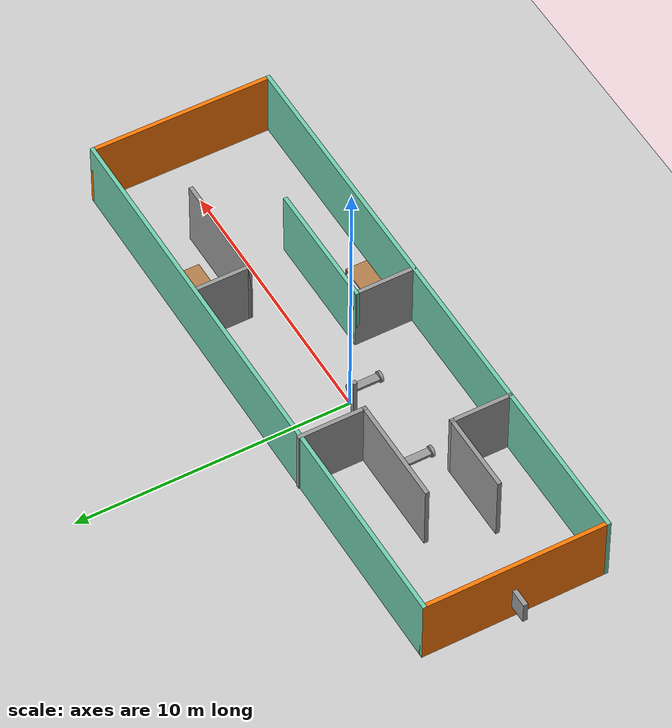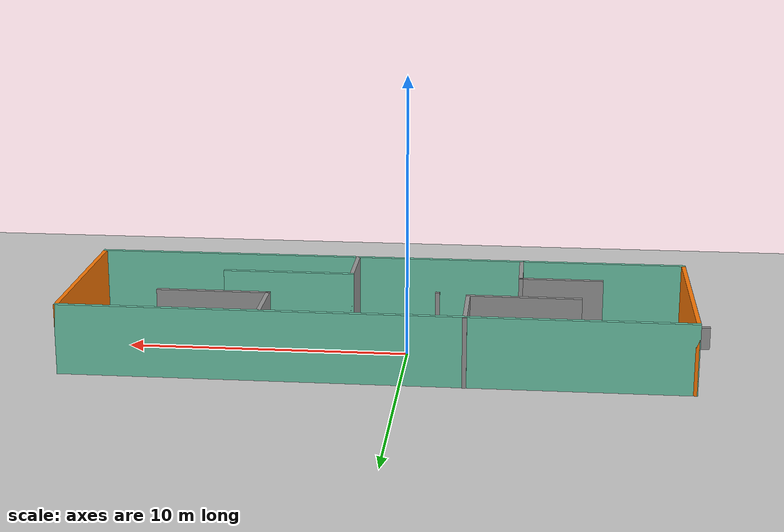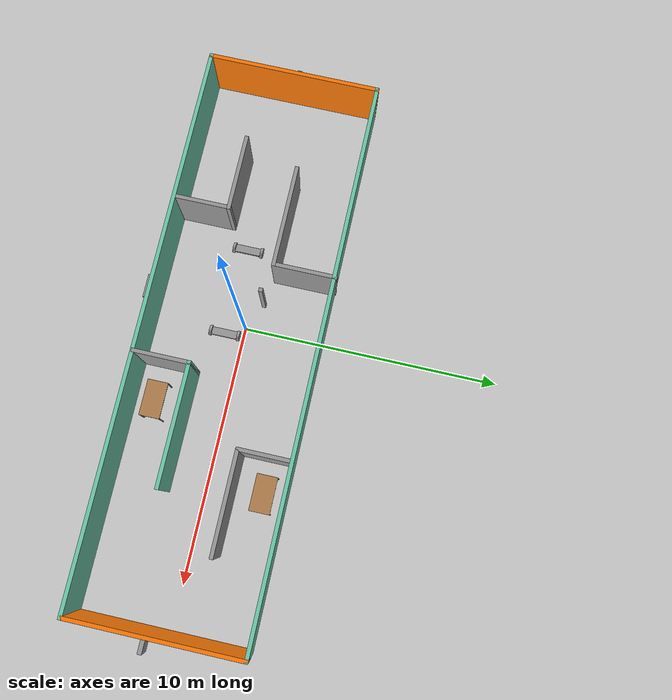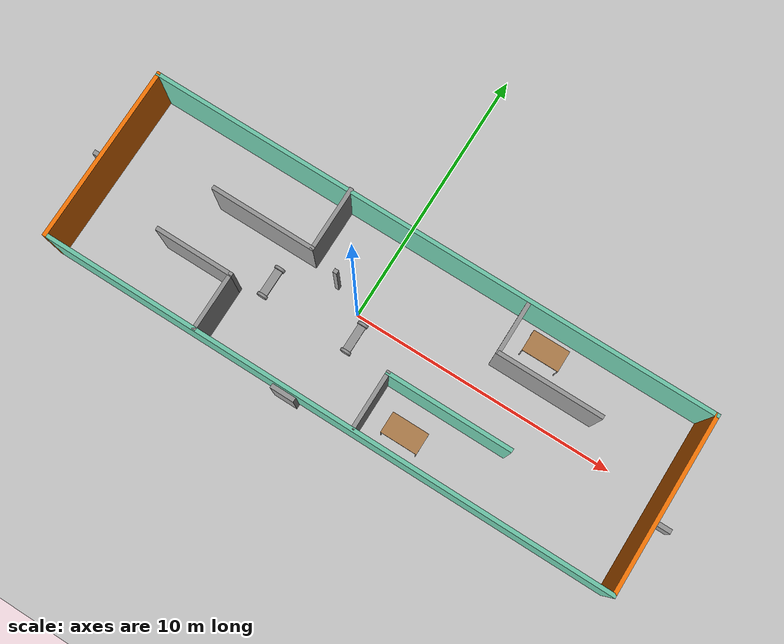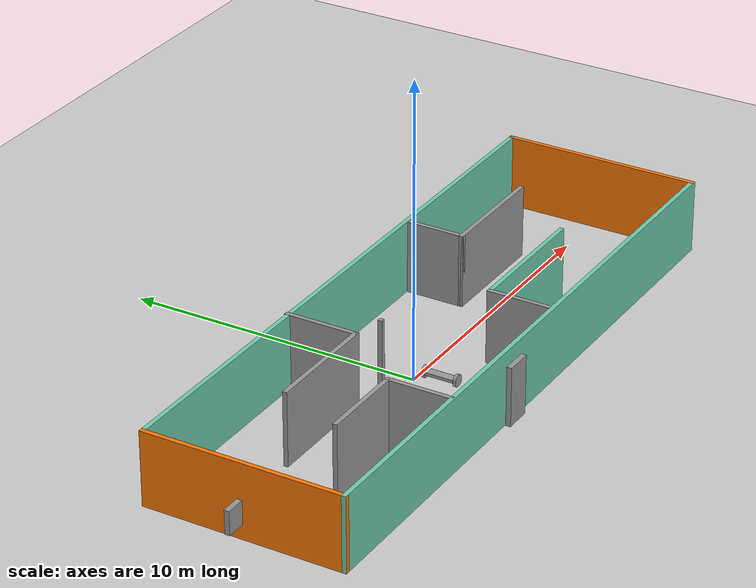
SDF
<sdf version="1.6">
 <world name="default">
  <plugin name="hello_world" filename="libhello_world.so"/>
  <light name="sun" type="directional">
   <pose>0 0 10 0 -0 0</pose>
   <diffuse>0.8 0.8 0.8 1</diffuse>
   <specular>0.1 0.1 0.1 1</specular>
   <attenuation>
    <range>1000</range>
    <constant>0.9</constant>
    <linear>0.01</linear>
    <quadratic>0.001</quadratic>
   </attenuation>
   <direction>-0.5 0.5 -1</direction>
  </light>
  <model name="ground_plane">
   <static>1</static>
   <link name="link">
    <collision name="collision">
     <geometry><plane><normal>0 0 1</normal><size>100 100</size></plane></geometry>
     <surface><friction><ode><mu>100</mu><mu2>50</mu2></ode></friction></surface>
    </collision>
    <visual name="visual">
     <cast_shadows>0</cast_shadows>
     <geometry><plane><normal>0 0 1</normal><size>100 100</size></plane></geometry>
     <material>
      <script><uri>file://media/materials/scripts/gazebo.material</uri><name>Gazebo/Grey</name></script>
     </material>
    </visual>
   </link>
  </model>
  <gravity>0 0 -9.8</gravity>
  <magnetic_field>6e-06 2.3e-05 -4.2e-05</magnetic_field>
  <atmosphere type="adiabatic"/>
  <physics name="default_physics" default="0" type="ode">
   <max_step_size>0.001</max_step_size>
   <real_time_factor>1</real_time_factor>
   <real_time_update_rate>1000</real_time_update_rate>
  </physics>
  <scene><ambient>0.4 0.4 0.4 1</ambient><background>0.7 0.7 0.7 1</background><shadows>1</shadows></scene>
  <spherical_coordinates>
   <surface_model>EARTH_WGS84</surface_model>
   <latitude_deg>0</latitude_deg>
   <longitude_deg>0</longitude_deg>
   <elevation>0</elevation>
   <heading_deg>0</heading_deg>
  </spherical_coordinates>
  <model name="Robot">
   <link name="link_0">
    <inertial>
     <mass>1</mass>
     <inertia>
      <ixx>0.166667</ixx>
      <ixy>0</ixy>
      <ixz>0</ixz>
      <iyy>0.166667</iyy>
      <iyz>0</iyz>
      <izz>0.166667</izz>
     </inertia>
     <pose>0 0 0.2 0 -0 0</pose>
    </inertial>
    <visual name="visual">
     <geometry><box><size>0.3 1 0.1</size></box></geometry>
     <material>
      <lighting>1</lighting>
      <script><uri>file://media/materials/scripts/gazebo.material</uri><name>Gazebo/Grey</name></script>
      <ambient>0.3 0.3 0.3 1</ambient>
      <diffuse>0.7 0.7 0.7 1</diffuse>
      <specular>0.01 0.01 0.01 1</specular>
      <emissive>0 0 0 1</emissive>
      <shader type="vertex"><normal_map>__default__</normal_map></shader>
     </material>
    </visual>
    <collision name="collision">
     <geometry><box><size>0.3 1 0.1</size></box></geometry>
     <surface>
      <friction>
       <ode><mu>1</mu><mu2>1</mu2><fdir1>0 0 0</fdir1><slip1>0</slip1><slip2>0</slip2></ode>
       <torsional>
        <coefficient>1</coefficient>
        <patch_radius>0</patch_radius>
        <surface_radius>0</surface_radius>
        <use_patch_radius>1</use_patch_radius>
        <ode><slip>0</slip></ode>
       </torsional>
      </friction>
      <bounce><restitution_coefficient>0</restitution_coefficient><threshold>1e+06</threshold></bounce>
      <contact>
       <collide_without_contact>0</collide_without_contact>
       <collide_without_contact_bitmask>1</collide_without_contact_bitmask>
       <collide_bitmask>1</collide_bitmask>
       <ode>
        <soft_cfm>0</soft_cfm>
        <soft_erp>0.2</soft_erp>
        <kp>1e+13</kp>
        <kd>1</kd>
        <max_vel>0.01</max_vel>
        <min_depth>0</min_depth>
       </ode>
       <bullet>
        <split_impulse>1</split_impulse>
        <split_impulse_penetration_threshold>-0.01</split_impulse_penetration_threshold>
        <soft_cfm>0</soft_cfm>
        <soft_erp>0.2</soft_erp>
        <kp>1e+13</kp>
        <kd>1</kd>
       </bullet>
      </contact>
     </surface>
    </collision>
   </link>
   <link name="link_1">
    <pose>0 -0.550001 0 1.5708 -0 0</pose>
    <inertial>
     <mass>1</mass>
     <inertia><ixx>0.145833</ixx><ixy>0</ixy><ixz>0</ixz><iyy>0.145833</iyy><iyz>0</iyz><izz>0.125</izz></inertia>
    </inertial>
    <visual name="visual">
     <geometry><cylinder><radius>0.2</radius><length>0.1</length></cylinder></geometry>
     <material>
      <lighting>1</lighting>
      <script><uri>file://media/materials/scripts/gazebo.material</uri><name>Gazebo/Grey</name></script>
      <ambient>0.3 0.3 0.3 1</ambient>
      <diffuse>0.7 0.7 0.7 1</diffuse>
      <specular>0.01 0.01 0.01 1</specular>
      <emissive>0 0 0 1</emissive>
      <shader type="vertex"><normal_map>__default__</normal_map></shader>
     </material>
    </visual>
    <collision name="collision">
     <geometry><cylinder><radius>0.2</radius><length>0.1</length></cylinder></geometry>
     <surface>
      <friction>
       <ode><mu>1</mu><mu2>1</mu2><fdir1>0 0 0</fdir1><slip1>0</slip1><slip2>0</slip2></ode>
       <torsional>
        <coefficient>1</coefficient>
        <patch_radius>0</patch_radius>
        <surface_radius>0</surface_radius>
        <use_patch_radius>1</use_patch_radius>
        <ode><slip>0</slip></ode>
       </torsional>
      </friction>
      <bounce><restitution_coefficient>0</restitution_coefficient><threshold>1e+06</threshold></bounce>
      <contact>
       <collide_without_contact>0</collide_without_contact>
       <collide_without_contact_bitmask>1</collide_without_contact_bitmask>
       <collide_bitmask>1</collide_bitmask>
       <ode>
        <soft_cfm>0</soft_cfm>
        <soft_erp>0.2</soft_erp>
        <kp>1e+13</kp>
        <kd>1</kd>
        <max_vel>0.01</max_vel>
        <min_depth>0</min_depth>
       </ode>
       <bullet>
        <split_impulse>1</split_impulse>
        <split_impulse_penetration_threshold>-0.01</split_impulse_penetration_threshold>
        <soft_cfm>0</soft_cfm>
        <soft_erp>0.2</soft_erp>
        <kp>1e+13</kp>
        <kd>1</kd>
       </bullet>
      </contact>
     </surface>
    </collision>
   </link>
   <link name="link_1_clone">
    <pose>0 0.550001 0 1.5708 -0 0</pose>
    <inertial>
     <mass>1</mass>
     <inertia><ixx>0.145833</ixx><ixy>0</ixy><ixz>0</ixz><iyy>0.145833</iyy><iyz>0</iyz><izz>0.125</izz></inertia>
    </inertial>
    <visual name="visual">
     <geometry><cylinder><radius>0.2</radius><length>0.1</length></cylinder></geometry>
     <material>
      <lighting>1</lighting>
      <script><uri>file://media/materials/scripts/gazebo.material</uri><name>Gazebo/Grey</name></script>
      <ambient>0.3 0.3 0.3 1</ambient>
      <diffuse>0.7 0.7 0.7 1</diffuse>
      <specular>0.01 0.01 0.01 1</specular>
      <emissive>0 0 0 1</emissive>
      <shader type="vertex"><normal_map>__default__</normal_map></shader>
     </material>
    </visual>
    <collision name="collision">
     <geometry><cylinder><radius>0.2</radius><length>0.1</length></cylinder></geometry>
     <surface>
      <friction>
       <ode><mu>1</mu><mu2>1</mu2><fdir1>0 0 0</fdir1><slip1>0</slip1><slip2>0</slip2></ode>
       <torsional>
        <coefficient>1</coefficient>
        <patch_radius>0</patch_radius>
        <surface_radius>0</surface_radius>
        <use_patch_radius>1</use_patch_radius>
        <ode><slip>0</slip></ode>
       </torsional>
      </friction>
      <bounce><restitution_coefficient>0</restitution_coefficient><threshold>1e+06</threshold></bounce>
      <contact>
       <collide_without_contact>0</collide_without_contact>
       <collide_without_contact_bitmask>1</collide_without_contact_bitmask>
       <collide_bitmask>1</collide_bitmask>
       <ode>
        <soft_cfm>0</soft_cfm>
        <soft_erp>0.2</soft_erp>
        <kp>1e+13</kp>
        <kd>1</kd>
        <max_vel>0.01</max_vel>
        <min_depth>0</min_depth>
       </ode>
       <bullet>
        <split_impulse>1</split_impulse>
        <split_impulse_penetration_threshold>-0.01</split_impulse_penetration_threshold>
        <soft_cfm>0</soft_cfm>
        <soft_erp>0.2</soft_erp>
        <kp>1e+13</kp>
        <kd>1</kd>
       </bullet>
      </contact>
     </surface>
    </collision>
   </link>
   <joint name="link_0_JOINT_0" type="revolute">
    <parent>link_0</parent>
    <child>link_1</child>
    <axis>
     <xyz>0 0 1</xyz>
     <use_parent_model_frame>0</use_parent_model_frame>
     <limit>
      <lower>-1.79769e+308</lower>
      <upper>1.79769e+308</upper>
      <effort>-1</effort>
      <velocity>-1</velocity>
     </limit>
     <dynamics>
      <spring_reference>0</spring_reference>
      <spring_stiffness>0</spring_stiffness>
      <damping>0</damping>
     </dynamics>
    </axis>
    <physics>
     <ode><limit><cfm>0</cfm><erp>0.2</erp></limit><suspension><cfm>0</cfm><erp>0.2</erp></suspension></ode>
    </physics>
   </joint>
   <joint name="link_0_JOINT_1" type="revolute">
    <parent>link_0</parent>
    <child>link_1_clone</child>
    <axis>
     <xyz>0 0 1</xyz>
     <use_parent_model_frame>0</use_parent_model_frame>
     <limit>
      <lower>-1.79769e+308</lower>
      <upper>1.79769e+308</upper>
      <effort>-1</effort>
      <velocity>-1</velocity>
     </limit>
     <dynamics>
      <spring_reference>0</spring_reference>
      <spring_stiffness>0</spring_stiffness>
      <damping>0</damping>
     </dynamics>
    </axis>
    <physics>
     <ode><limit><cfm>0</cfm><erp>0.2</erp></limit><suspension><cfm>0</cfm><erp>0.2</erp></suspension></ode>
    </physics>
   </joint>
   <static>0</static>
   <pose>0.359636 -0.755964 0.2 0 -0 0</pose>
  </model>
  <model name="Robot_clone">
   <link name="link_0">
    <inertial>
     <mass>1</mass>
     <inertia>
      <ixx>0.166667</ixx>
      <ixy>0</ixy>
      <ixz>0</ixz>
      <iyy>0.166667</iyy>
      <iyz>0</iyz>
      <izz>0.166667</izz>
     </inertia>
     <pose>0 0 0.2 0 -0 0</pose>
    </inertial>
    <visual name="visual">
     <geometry><box><size>0.3 1 0.1</size></box></geometry>
     <material>
      <lighting>1</lighting>
      <script><uri>file://media/materials/scripts/gazebo.material</uri><name>Gazebo/Grey</name></script>
      <ambient>0.3 0.3 0.3 1</ambient>
      <diffuse>0.7 0.7 0.7 1</diffuse>
      <specular>0.01 0.01 0.01 1</specular>
      <emissive>0 0 0 1</emissive>
      <shader type="vertex"><normal_map>__default__</normal_map></shader>
     </material>
    </visual>
    <collision name="collision">
     <geometry><box><size>0.3 1 0.1</size></box></geometry>
     <surface>
      <friction>
       <ode><mu>1</mu><mu2>1</mu2><fdir1>0 0 0</fdir1><slip1>0</slip1><slip2>0</slip2></ode>
       <torsional>
        <coefficient>1</coefficient>
        <patch_radius>0</patch_radius>
        <surface_radius>0</surface_radius>
        <use_patch_radius>1</use_patch_radius>
        <ode><slip>0</slip></ode>
       </torsional>
      </friction>
      <bounce><restitution_coefficient>0</restitution_coefficient><threshold>1e+06</threshold></bounce>
      <contact>
       <collide_without_contact>0</collide_without_contact>
       <collide_without_contact_bitmask>1</collide_without_contact_bitmask>
       <collide_bitmask>1</collide_bitmask>
       <ode>
        <soft_cfm>0</soft_cfm>
        <soft_erp>0.2</soft_erp>
        <kp>1e+13</kp>
        <kd>1</kd>
        <max_vel>0.01</max_vel>
        <min_depth>0</min_depth>
       </ode>
       <bullet>
        <split_impulse>1</split_impulse>
        <split_impulse_penetration_threshold>-0.01</split_impulse_penetration_threshold>
        <soft_cfm>0</soft_cfm>
        <soft_erp>0.2</soft_erp>
        <kp>1e+13</kp>
        <kd>1</kd>
       </bullet>
      </contact>
     </surface>
    </collision>
   </link>
   <link name="link_1">
    <pose>0 -0.550001 0 1.5708 -0 0</pose>
    <inertial>
     <mass>1</mass>
     <inertia><ixx>0.145833</ixx><ixy>0</ixy><ixz>0</ixz><iyy>0.145833</iyy><iyz>0</iyz><izz>0.125</izz></inertia>
    </inertial>
    <visual name="visual">
     <geometry><cylinder><radius>0.2</radius><length>0.1</length></cylinder></geometry>
     <material>
      <lighting>1</lighting>
      <script><uri>file://media/materials/scripts/gazebo.material</uri><name>Gazebo/Grey</name></script>
      <ambient>0.3 0.3 0.3 1</ambient>
      <diffuse>0.7 0.7 0.7 1</diffuse>
      <specular>0.01 0.01 0.01 1</specular>
      <emissive>0 0 0 1</emissive>
      <shader type="vertex"><normal_map>__default__</normal_map></shader>
     </material>
    </visual>
    <collision name="collision">
     <geometry><cylinder><radius>0.2</radius><length>0.1</length></cylinder></geometry>
     <surface>
      <friction>
       <ode><mu>1</mu><mu2>1</mu2><fdir1>0 0 0</fdir1><slip1>0</slip1><slip2>0</slip2></ode>
       <torsional>
        <coefficient>1</coefficient>
        <patch_radius>0</patch_radius>
        <surface_radius>0</surface_radius>
        <use_patch_radius>1</use_patch_radius>
        <ode><slip>0</slip></ode>
       </torsional>
      </friction>
      <bounce><restitution_coefficient>0</restitution_coefficient><threshold>1e+06</threshold></bounce>
      <contact>
       <collide_without_contact>0</collide_without_contact>
       <collide_without_contact_bitmask>1</collide_without_contact_bitmask>
       <collide_bitmask>1</collide_bitmask>
       <ode>
        <soft_cfm>0</soft_cfm>
        <soft_erp>0.2</soft_erp>
        <kp>1e+13</kp>
        <kd>1</kd>
        <max_vel>0.01</max_vel>
        <min_depth>0</min_depth>
       </ode>
       <bullet>
        <split_impulse>1</split_impulse>
        <split_impulse_penetration_threshold>-0.01</split_impulse_penetration_threshold>
        <soft_cfm>0</soft_cfm>
        <soft_erp>0.2</soft_erp>
        <kp>1e+13</kp>
        <kd>1</kd>
       </bullet>
      </contact>
     </surface>
    </collision>
   </link>
   <link name="link_1_clone">
    <pose>0 0.550001 0 1.5708 -0 0</pose>
    <inertial>
     <mass>1</mass>
     <inertia><ixx>0.145833</ixx><ixy>0</ixy><ixz>0</ixz><iyy>0.145833</iyy><iyz>0</iyz><izz>0.125</izz></inertia>
    </inertial>
    <visual name="visual">
     <geometry><cylinder><radius>0.2</radius><length>0.1</length></cylinder></geometry>
     <material>
      <lighting>1</lighting>
      <script><uri>file://media/materials/scripts/gazebo.material</uri><name>Gazebo/Grey</name></script>
      <ambient>0.3 0.3 0.3 1</ambient>
      <diffuse>0.7 0.7 0.7 1</diffuse>
      <specular>0.01 0.01 0.01 1</specular>
      <emissive>0 0 0 1</emissive>
      <shader type="vertex"><normal_map>__default__</normal_map></shader>
     </material>
    </visual>
    <collision name="collision">
     <geometry><cylinder><radius>0.2</radius><length>0.1</length></cylinder></geometry>
     <surface>
      <friction>
       <ode><mu>1</mu><mu2>1</mu2><fdir1>0 0 0</fdir1><slip1>0</slip1><slip2>0</slip2></ode>
       <torsional>
        <coefficient>1</coefficient>
        <patch_radius>0</patch_radius>
        <surface_radius>0</surface_radius>
        <use_patch_radius>1</use_patch_radius>
        <ode><slip>0</slip></ode>
       </torsional>
      </friction>
      <bounce><restitution_coefficient>0</restitution_coefficient><threshold>1e+06</threshold></bounce>
      <contact>
       <collide_without_contact>0</collide_without_contact>
       <collide_without_contact_bitmask>1</collide_without_contact_bitmask>
       <collide_bitmask>1</collide_bitmask>
       <ode>
        <soft_cfm>0</soft_cfm>
        <soft_erp>0.2</soft_erp>
        <kp>1e+13</kp>
        <kd>1</kd>
        <max_vel>0.01</max_vel>
        <min_depth>0</min_depth>
       </ode>
       <bullet>
        <split_impulse>1</split_impulse>
        <split_impulse_penetration_threshold>-0.01</split_impulse_penetration_threshold>
        <soft_cfm>0</soft_cfm>
        <soft_erp>0.2</soft_erp>
        <kp>1e+13</kp>
        <kd>1</kd>
       </bullet>
      </contact>
     </surface>
    </collision>
   </link>
   <joint name="link_0_JOINT_0" type="revolute">
    <parent>link_0</parent>
    <child>link_1</child>
    <axis>
     <xyz>0 0 1</xyz>
     <use_parent_model_frame>0</use_parent_model_frame>
     <limit>
      <lower>-1.79769e+308</lower>
      <upper>1.79769e+308</upper>
      <effort>-1</effort>
      <velocity>-1</velocity>
     </limit>
     <dynamics>
      <spring_reference>0</spring_reference>
      <spring_stiffness>0</spring_stiffness>
      <damping>0</damping>
     </dynamics>
    </axis>
    <physics>
     <ode><limit><cfm>0</cfm><erp>0.2</erp></limit><suspension><cfm>0</cfm><erp>0.2</erp></suspension></ode>
    </physics>
   </joint>
   <joint name="link_0_JOINT_1" type="revolute">
    <parent>link_0</parent>
    <child>link_1_clone</child>
    <axis>
     <xyz>0 0 1</xyz>
     <use_parent_model_frame>0</use_parent_model_frame>
     <limit>
      <lower>-1.79769e+308</lower>
      <upper>1.79769e+308</upper>
      <effort>-1</effort>
      <velocity>-1</velocity>
     </limit>
     <dynamics>
      <spring_reference>0</spring_reference>
      <spring_stiffness>0</spring_stiffness>
      <damping>0</damping>
     </dynamics>
    </axis>
    <physics>
     <ode><limit><cfm>0</cfm><erp>0.2</erp></limit><suspension><cfm>0</cfm><erp>0.2</erp></suspension></ode>
    </physics>
   </joint>
   <static>0</static>
   <pose>-3.12107 -0.641375 0.199999 -3e-06 0 0</pose>
  </model>
  <model name="Building">
   <pose>0.945519 -0.245277 0 0 -0 0</pose>
   <link name="Door_0">
    <collision name="Door_0_Collision">
     <geometry><box><size>0.9 0.17 2</size></box></geometry>
     <pose>0 0 1 0 -0 0</pose>
    </collision>
    <visual name="Door_0_Visual">
     <pose>0 0 1 0 -0 0</pose>
     <geometry><box><size>0.9 0.17 2</size></box></geometry>
     <material>
      <script><uri>file://media/materials/scripts/gazebo.material</uri><name>Gazebo/Grey</name></script>
     </material>
    </visual>
    <pose>-1.39357 -3.49419 0 0 -0 0</pose>
   </link>
   <link name="Wall_1">
    <collision name="Wall_1_Collision">
     <geometry><box><size>0.15 0.15 2.5</size></box></geometry>
     <pose>0 0 1.25 0 -0 0</pose>
    </collision>
    <visual name="Wall_1_Visual">
     <pose>0 0 1.25 0 -0 0</pose>
     <geometry><box><size>0.15 0.15 2.5</size></box></geometry>
     <material>
      <script><uri>file://media/materials/scripts/gazebo.material</uri><name>Gazebo/Grey</name></script>
      <ambient>1 1 1 1</ambient>
     </material>
    </visual>
    <pose>-2.04404 0.733127 0 0 -0 0</pose>
   </link>
   <link name="Wall_10">
    <collision name="Wall_10_Collision">
     <geometry><box><size>4 0.15 2.5</size></box></geometry>
     <pose>0 0 1.25 0 -0 0</pose>
    </collision>
    <visual name="Wall_10_Visual">
     <pose>0 0 1.25 0 -0 0</pose>
     <geometry><box><size>4 0.15 2.5</size></box></geometry>
     <material>
      <script><uri>file://media/materials/scripts/gazebo.material</uri><name>Gazebo/Grey</name></script>
      <ambient>1 1 1 1</ambient>
     </material>
    </visual>
    <pose>-5.04258 0.96914 0 0 -0 3.14159</pose>
   </link>
   <link name="Wall_12">
    <collision name="Wall_12_Collision">
     <geometry><box><size>2.5 0.15 2.5</size></box></geometry>
     <pose>0 0 1.25 0 -0 0</pose>
    </collision>
    <visual name="Wall_12_Visual">
     <pose>0 0 1.25 0 -0 0</pose>
     <geometry><box><size>2.5 0.15 2.5</size></box></geometry>
     <material>
      <script><uri>file://media/materials/scripts/gazebo.material</uri><name>Gazebo/Grey</name></script>
      <ambient>1 1 1 1</ambient>
     </material>
    </visual>
    <pose>-3.11758 2.14414 0 0 -0 1.5708</pose>
   </link>
   <link name="Wall_14">
    <collision name="Wall_14_Collision">
     <geometry><box><size>2 0.15 2.5</size></box></geometry>
     <pose>0 0 1.25 0 -0 0</pose>
    </collision>
    <visual name="Wall_14_Visual">
     <pose>0 0 1.25 0 -0 0</pose>
     <geometry><box><size>2 0.15 2.5</size></box></geometry>
     <material>
      <script><uri>file://media/materials/scripts/gazebo.material</uri><name>Gazebo/Grey</name></script>
      <ambient>1 1 1 1</ambient>
     </material>
    </visual>
    <pose>3.83894 2.20463 0 0 0 -1.5708</pose>
   </link>
   <link name="Wall_15">
    <collision name="Wall_15_Collision">
     <geometry><box><size>4 0.15 2.5</size></box></geometry>
     <pose>0 0 1.25 0 -0 0</pose>
    </collision>
    <visual name="Wall_15_Visual">
     <pose>0 0 1.25 0 -0 0</pose>
     <geometry><box><size>4 0.15 2.5</size></box></geometry>
     <material>
      <script><uri>file://media/materials/scripts/gazebo.material</uri><name>Gazebo/Grey</name></script>
      <ambient>1 1 1 1</ambient>
     </material>
    </visual>
    <pose>5.76394 1.27963 0 0 -0 0</pose>
   </link>
   <link name="Wall_17">
    <collision name="Wall_17_Collision">
     <geometry><box><size>2.25 0.15 2.5</size></box></geometry>
     <pose>0 0 1.25 0 -0 0</pose>
    </collision>
    <visual name="Wall_17_Visual">
     <pose>0 0 1.25 0 -0 0</pose>
     <geometry><box><size>2.25 0.15 2.5</size></box></geometry>
     <material>
      <script><uri>file://media/materials/scripts/gazebo.material</uri><name>Gazebo/Grey</name></script>
      <ambient>1 1 1 1</ambient>
     </material>
    </visual>
    <pose>1.17732 -2.23247 0 0 -0 1.5708</pose>
   </link>
   <link name="Wall_18">
    <collision name="Wall_18_Collision">
     <geometry><box><size>4.75 0.15 2.5</size></box></geometry>
     <pose>0 0 1.25 0 -0 0</pose>
    </collision>
    <visual name="Wall_18_Visual">
     <pose>0 0 1.25 0 -0 0</pose>
     <geometry><box><size>4.75 0.15 2.5</size></box></geometry>
     <material>
      <script><uri>file://media/materials/scripts/gazebo.material</uri><name>Gazebo/Grey</name></script>
      <ambient>0.435294 0.796078 0.67451 1</ambient>
     </material>
    </visual>
    <pose>3.47732 -1.18247 0 0 -0 0</pose>
   </link>
   <link name="Wall_20">
    <collision name="Wall_20_Collision">
     <geometry><box><size>2.25 0.15 2.5</size></box></geometry>
     <pose>0 0 1.25 0 -0 0</pose>
    </collision>
    <visual name="Wall_20_Visual">
     <pose>0 0 1.25 0 -0 0</pose>
     <geometry><box><size>2.25 0.15 2.5</size></box></geometry>
     <material>
      <script><uri>file://media/materials/scripts/gazebo.material</uri><name>Gazebo/Grey</name></script>
      <ambient>1 1 1 1</ambient>
     </material>
    </visual>
    <pose>-4.90208 -2.23247 0 0 -0 1.5708</pose>
   </link>
   <link name="Wall_21">
    <collision name="Wall_21_Collision">
     <geometry><box><size>3 0.15 2.5</size></box></geometry>
     <pose>0 0 1.25 0 -0 0</pose>
    </collision>
    <visual name="Wall_21_Visual">
     <pose>0 0 1.25 0 -0 0</pose>
     <geometry><box><size>3 0.15 2.5</size></box></geometry>
     <material>
      <script><uri>file://media/materials/scripts/gazebo.material</uri><name>Gazebo/Grey</name></script>
      <ambient>1 1 1 1</ambient>
     </material>
    </visual>
    <pose>-6.32708 -1.18247 0 0 -0 3.14159</pose>
   </link>
   <link name="Wall_3">
    <collision name="Wall_3_Collision">
     <geometry><box><size>21.75 0.15 2.5</size></box></geometry>
     <pose>0 0 1.25 0 -0 0</pose>
    </collision>
    <visual name="Wall_3_Visual">
     <pose>0 0 1.25 0 -0 0</pose>
     <geometry><box><size>21.75 0.15 2.5</size></box></geometry>
     <material>
      <script><uri>file://media/materials/scripts/gazebo.material</uri><name>Gazebo/Grey</name></script>
      <ambient>0.435294 0.796078 0.67451 1</ambient>
     </material>
    </visual>
    <pose>0 3.28086 0 0 -0 0</pose>
   </link>
   <link name="Wall_4">
    <collision name="Wall_4_Collision">
     <geometry><box><size>6.75 0.15 2.5</size></box></geometry>
     <pose>0 0 1.25 0 -0 0</pose>
    </collision>
    <visual name="Wall_4_Visual">
     <pose>0 0 1.25 0 -0 0</pose>
     <geometry><box><size>6.75 0.15 2.5</size></box></geometry>
     <material>
      <script><uri>file://media/materials/scripts/gazebo.material</uri><name>Gazebo/Grey</name></script>
      <ambient>0.996078 0.47451 0.0196078 1</ambient>
     </material>
    </visual>
    <pose>10.8 -0.01914 0 0 0 -1.5708</pose>
   </link>
   <link name="Wall_6">
    <collision name="Wall_6_Collision">
     <geometry><box><size>21.75 0.15 2.5</size></box></geometry>
     <pose>0 0 1.25 0 -0 0</pose>
    </collision>
    <visual name="Wall_6_Visual">
     <pose>0 0 1.25 0 -0 0</pose>
     <geometry><box><size>21.75 0.15 2.5</size></box></geometry>
     <material>
      <script><uri>file://media/materials/scripts/gazebo.material</uri><name>Gazebo/Grey</name></script>
      <ambient>0.435294 0.796078 0.67451 1</ambient>
     </material>
    </visual>
    <pose>0 -3.31914 0 0 -0 3.14159</pose>
   </link>
   <link name="Wall_7">
    <collision name="Wall_7_Collision">
     <geometry><box><size>6.75 0.15 2.5</size></box></geometry>
     <pose>0 0 1.25 0 -0 0</pose>
    </collision>
    <visual name="Wall_7_Visual">
     <pose>0 0 1.25 0 -0 0</pose>
     <geometry><box><size>6.75 0.15 2.5</size></box></geometry>
     <material>
      <script><uri>file://media/materials/scripts/gazebo.material</uri><name>Gazebo/Grey</name></script>
      <ambient>0.996078 0.47451 0.0196078 1</ambient>
     </material>
    </visual>
    <pose>-10.8 -0.01914 0 0 -0 1.5708</pose>
   </link>
   <link name="Window_0">
    <collision name="Window_0_Collision">
     <geometry><box><size>0.8 0.17 0.8</size></box></geometry>
     <pose>0 0 0.4 0 -0 0</pose>
    </collision>
    <visual name="Window_0_Visual">
     <pose>0 0 0.4 0 -0 0</pose>
     <geometry><box><size>0.8 0.17 0.8</size></box></geometry>
     <material>
      <script><uri>file://media/materials/scripts/gazebo.material</uri><name>Gazebo/Grey</name></script>
     </material>
    </visual>
    <pose>11.1887 -0.530104 0.5 0 -0 0</pose>
   </link>
   <link name="Window_1">
    <collision name="Window_1_Collision">
     <geometry><box><size>0.8 0.17 0.8</size></box></geometry>
     <pose>0 0 0.4 0 -0 0</pose>
    </collision>
    <visual name="Window_1_Visual">
     <pose>0 0 0.4 0 -0 0</pose>
     <geometry><box><size>0.8 0.17 0.8</size></box></geometry>
     <material>
      <script><uri>file://media/materials/scripts/gazebo.material</uri><name>Gazebo/Grey</name></script>
     </material>
    </visual>
    <pose>-11.1327 0.044566 0.5 0 -0 0</pose>
   </link>
   <static>1</static>
  </model>
  <model name="table">
   <static>0</static>
   <link name="link">
    <collision name="surface">
     <pose>0 0 1 0 -0 0</pose>
     <geometry><box><size>1.5 0.8 0.03</size></box></geometry>
     <surface><friction><ode><mu>0.6</mu><mu2>0.6</mu2></ode></friction></surface>
    </collision>
    <visual name="visual1">
     <pose>0 0 1 0 -0 0</pose>
     <geometry><box><size>1.4 0.8 0.04</size></box></geometry>
     <material>
      <script><uri>file://media/materials/scripts/gazebo.material</uri><name>Gazebo/Wood</name></script>
     </material>
    </visual>
    <collision name="front_left_leg">
     <pose>0.68 0.38 0.5 0 -0 0</pose>
     <geometry><cylinder><radius>0.02</radius><length>1</length></cylinder></geometry>
    </collision>
    <visual name="front_left_leg">
     <pose>0.68 0.38 0.5 0 -0 0</pose>
     <geometry><cylinder><radius>0.02</radius><length>1</length></cylinder></geometry>
     <material>
      <script><uri>file://media/materials/scripts/gazebo.material</uri><name>Gazebo/Grey</name></script>
     </material>
    </visual>
    <collision name="front_right_leg">
     <pose>0.68 -0.38 0.5 0 -0 0</pose>
     <geometry><cylinder><radius>0.02</radius><length>1</length></cylinder></geometry>
    </collision>
    <visual name="front_right_leg">
     <pose>0.68 -0.38 0.5 0 -0 0</pose>
     <geometry><cylinder><radius>0.02</radius><length>1</length></cylinder></geometry>
     <material>
      <script><uri>file://media/materials/scripts/gazebo.material</uri><name>Gazebo/Grey</name></script>
     </material>
    </visual>
    <collision name="back_right_leg">
     <pose>-0.68 -0.38 0.5 0 -0 0</pose>
     <geometry><cylinder><radius>0.02</radius><length>1</length></cylinder></geometry>
    </collision>
    <visual name="back_right_leg">
     <pose>-0.68 -0.38 0.5 0 -0 0</pose>
     <geometry><cylinder><radius>0.02</radius><length>1</length></cylinder></geometry>
     <material>
      <script><uri>file://media/materials/scripts/gazebo.material</uri><name>Gazebo/Grey</name></script>
     </material>
    </visual>
    <collision name="back_left_leg">
     <pose>-0.68 0.38 0.5 0 -0 0</pose>
     <geometry><cylinder><radius>0.02</radius><length>1</length></cylinder></geometry>
    </collision>
    <visual name="back_left_leg">
     <pose>-0.68 0.38 0.5 0 -0 0</pose>
     <geometry><cylinder><radius>0.02</radius><length>1</length></cylinder></geometry>
     <material>
      <script><uri>file://media/materials/scripts/gazebo.material</uri><name>Gazebo/Grey</name></script>
     </material>
    </visual>
    <inertial>
     <inertia><ixx>1</ixx><ixy>0</ixy><ixz>0</ixz><iyy>1</iyy><iyz>0</iyz><izz>1</izz></inertia>
     <mass>1</mass>
    </inertial>
   </link>
   <pose>3.56154 -2.65063 0 0 -0 0</pose>
  </model>
  <model name="table_0">
   <static>0</static>
   <link name="link">
    <collision name="surface">
     <pose>0 0 1 0 -0 0</pose>
     <geometry><box><size>1.5 0.8 0.03</size></box></geometry>
     <surface><friction><ode><mu>0.6</mu><mu2>0.6</mu2></ode></friction></surface>
    </collision>
    <visual name="visual1">
     <pose>0 0 1 0 -0 0</pose>
     <geometry><box><size>1.4 0.8 0.04</size></box></geometry>
     <material>
      <script><uri>file://media/materials/scripts/gazebo.material</uri><name>Gazebo/Wood</name></script>
     </material>
    </visual>
    <collision name="front_left_leg">
     <pose>0.68 0.38 0.5 0 -0 0</pose>
     <geometry><cylinder><radius>0.02</radius><length>1</length></cylinder></geometry>
    </collision>
    <visual name="front_left_leg">
     <pose>0.68 0.38 0.5 0 -0 0</pose>
     <geometry><cylinder><radius>0.02</radius><length>1</length></cylinder></geometry>
     <material>
      <script><uri>file://media/materials/scripts/gazebo.material</uri><name>Gazebo/Grey</name></script>
     </material>
    </visual>
    <collision name="front_right_leg">
     <pose>0.68 -0.38 0.5 0 -0 0</pose>
     <geometry><cylinder><radius>0.02</radius><length>1</length></cylinder></geometry>
    </collision>
    <visual name="front_right_leg">
     <pose>0.68 -0.38 0.5 0 -0 0</pose>
     <geometry><cylinder><radius>0.02</radius><length>1</length></cylinder></geometry>
     <material>
      <script><uri>file://media/materials/scripts/gazebo.material</uri><name>Gazebo/Grey</name></script>
     </material>
    </visual>
    <collision name="back_right_leg">
     <pose>-0.68 -0.38 0.5 0 -0 0</pose>
     <geometry><cylinder><radius>0.02</radius><length>1</length></cylinder></geometry>
    </collision>
    <visual name="back_right_leg">
     <pose>-0.68 -0.38 0.5 0 -0 0</pose>
     <geometry><cylinder><radius>0.02</radius><length>1</length></cylinder></geometry>
     <material>
      <script><uri>file://media/materials/scripts/gazebo.material</uri><name>Gazebo/Grey</name></script>
     </material>
    </visual>
    <collision name="back_left_leg">
     <pose>-0.68 0.38 0.5 0 -0 0</pose>
     <geometry><cylinder><radius>0.02</radius><length>1</length></cylinder></geometry>
    </collision>
    <visual name="back_left_leg">
     <pose>-0.68 0.38 0.5 0 -0 0</pose>
     <geometry><cylinder><radius>0.02</radius><length>1</length></cylinder></geometry>
     <material>
      <script><uri>file://media/materials/scripts/gazebo.material</uri><name>Gazebo/Grey</name></script>
     </material>
    </visual>
    <inertial>
     <inertia><ixx>1</ixx><ixy>0</ixy><ixz>0</ixz><iyy>1</iyy><iyz>0</iyz><izz>1</izz></inertia>
     <mass>1</mass>
    </inertial>
   </link>
   <pose>6.10113 2.20484 0 0 -0 0</pose>
  </model>
 </world>
</sdf>
